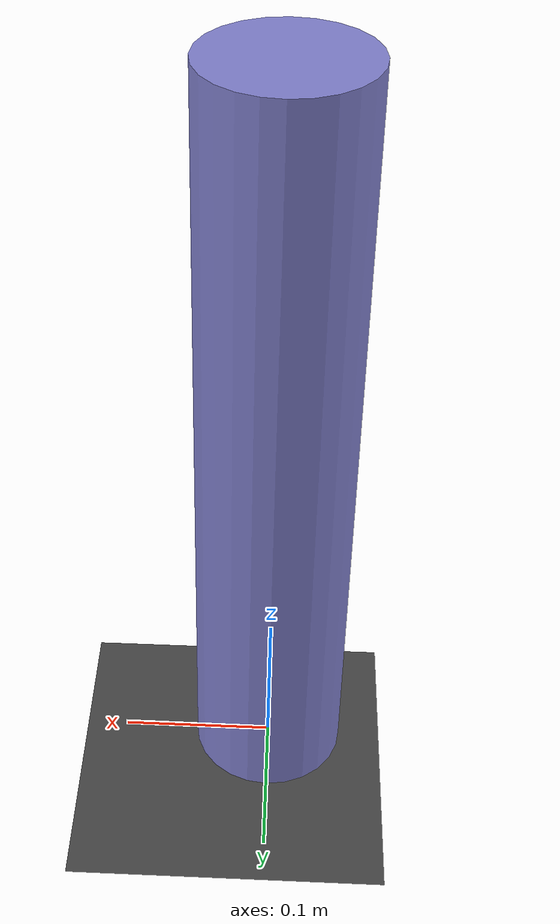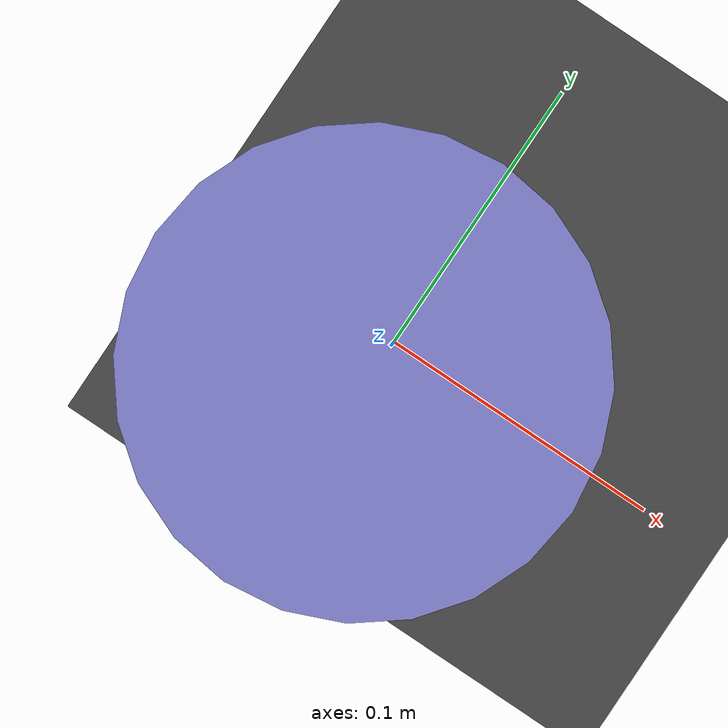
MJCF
<!-- a basic model allowing to test on the fly mass modification via mujoco-py
see src_py/uncertainty/lift.py -->
<mujoco>
    <asset>
        <texture type="skybox" builtin="gradient" rgb1=".6 .6 .9" rgb2="0 0 0" width="512" height="512"/>

        <texture name="texplane" type="2d" builtin="checker" rgb1=".25 .25 .25" rgb2=".3 .3 .3" width="512" height="512" mark="cross" markrgb=".8 .8 .8"/>
        <material name="matplane" reflectance=".3" texture="texplane" texrepeat="1 1" texuniform="true"/>
    </asset>

    <worldbody>
        <geom name="floor" pos="0 0 0" size="0 0 1" type="plane" material="matplane"/>
        <light directional="true" diffuse=".8 .8 .8" specular=".2 .2 .2" pos="0 0 5" dir="0 0 -1"/>

        <body name="single_mass">
            <geom type="cylinder" fromto="0 0 0 0 0 .5" size=".05" rgba="0.5 0.5 0.8 1"/>
            <inertial pos="0 0 .25" mass=".1" diaginertia=".04 .02 .02"/>

            <joint name="vertical_slide" type="slide"/>
        </body>
    </worldbody>
</mujoco>
